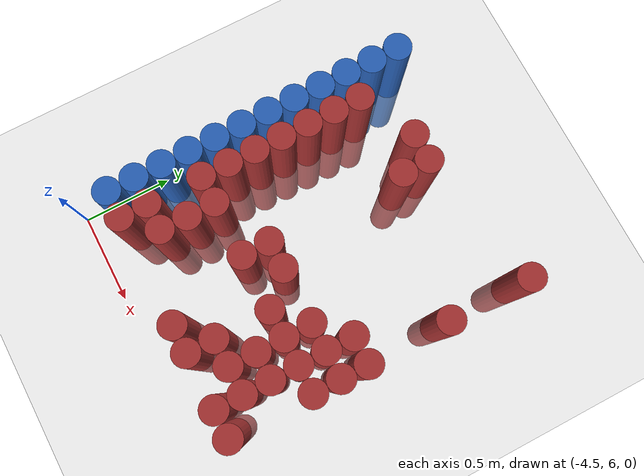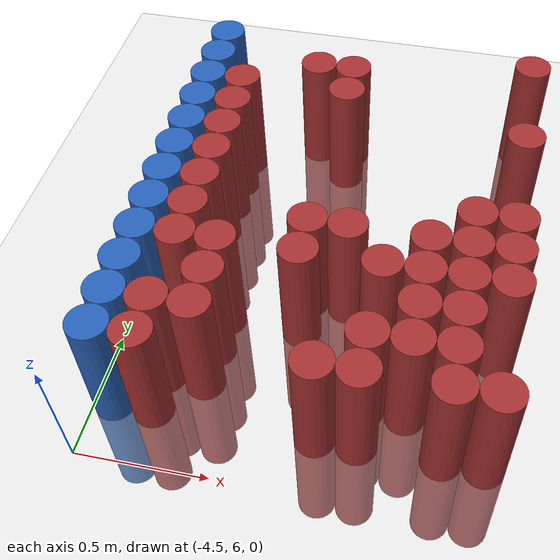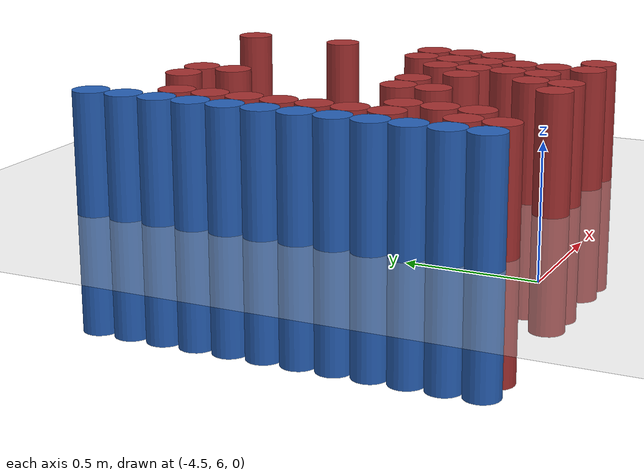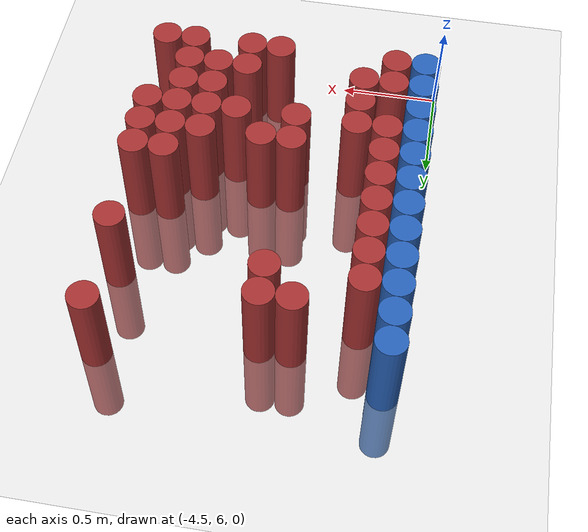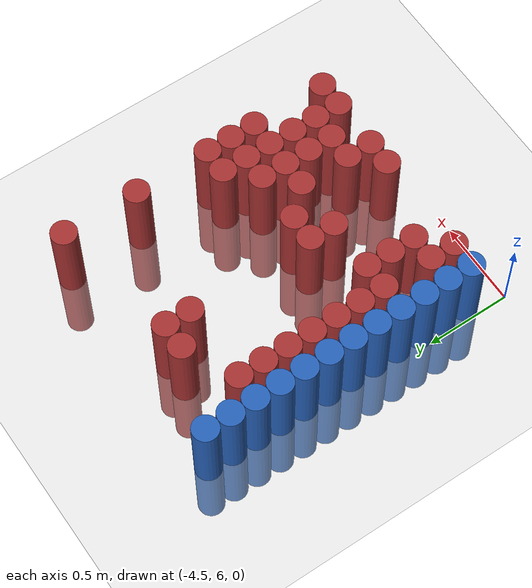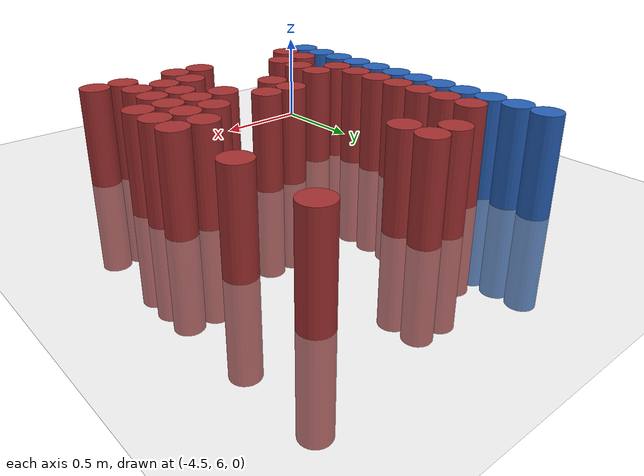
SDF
<sdf version="1.6">
 <world name="default">
  <model name="ground_plane">
   <static>1</static>
   <link name="link">
    <collision name="collision">
     <geometry><plane><normal>0 0 1</normal><size>100 100</size></plane></geometry>
     <surface><friction><ode><mu>100</mu><mu2>50</mu2></ode></friction></surface>
    </collision>
    <visual name="visual">
     <cast_shadows>0</cast_shadows>
     <geometry><plane><normal>0 0 1</normal><size>100 100</size></plane></geometry>
     <material>
      <script><uri>file://media/materials/scripts/gazebo.material</uri><name>Gazebo/Grey</name></script>
     </material>
    </visual>
   </link>
  </model>
  <model name="unit_cylinder_103">
   <static>1</static>
   <pose>-4.425000 6.225000 0.000000 0.000000 0.000000 0.000000</pose>
   <link name="link">
    <inertial>
     <mass>1</mass>
     <inertia><ixx>0.145833</ixx><ixy>0</ixy><ixz>0</ixz><iyy>0.145833</iyy><iyz>0</iyz><izz>0.125</izz></inertia>
    </inertial>
    <collision name="collision">
     <geometry><cylinder><radius>0.075000</radius><length>1</length></cylinder></geometry>
    </collision>
    <visual name="visual">
     <geometry><cylinder><radius>0.075000</radius><length>1</length></cylinder></geometry>
     <material>
      <ambient>0.152000 0.379000 0.720000 1</ambient>
      <diffuse>0.152000 0.379000 0.720000 1</diffuse>
     </material>
     <material>
      <script><name>Gazebo/Grey</name><uri>file://media/materials/scripts/gazebo.material</uri></script>
     </material>
    </visual>
   </link>
  </model>
  <model name="unit_cylinder_104">
   <static>1</static>
   <pose>-4.425000 6.375000 0.000000 0.000000 0.000000 0.000000</pose>
   <link name="link">
    <inertial>
     <mass>1</mass>
     <inertia><ixx>0.145833</ixx><ixy>0</ixy><ixz>0</ixz><iyy>0.145833</iyy><iyz>0</iyz><izz>0.125</izz></inertia>
    </inertial>
    <collision name="collision">
     <geometry><cylinder><radius>0.075000</radius><length>1</length></cylinder></geometry>
    </collision>
    <visual name="visual">
     <geometry><cylinder><radius>0.075000</radius><length>1</length></cylinder></geometry>
     <material>
      <ambient>0.152000 0.379000 0.720000 1</ambient>
      <diffuse>0.152000 0.379000 0.720000 1</diffuse>
     </material>
     <material>
      <script><name>Gazebo/Grey</name><uri>file://media/materials/scripts/gazebo.material</uri></script>
     </material>
    </visual>
   </link>
  </model>
  <model name="unit_cylinder_105">
   <static>1</static>
   <pose>-4.425000 6.525000 0.000000 0.000000 0.000000 0.000000</pose>
   <link name="link">
    <inertial>
     <mass>1</mass>
     <inertia><ixx>0.145833</ixx><ixy>0</ixy><ixz>0</ixz><iyy>0.145833</iyy><iyz>0</iyz><izz>0.125</izz></inertia>
    </inertial>
    <collision name="collision">
     <geometry><cylinder><radius>0.075000</radius><length>1</length></cylinder></geometry>
    </collision>
    <visual name="visual">
     <geometry><cylinder><radius>0.075000</radius><length>1</length></cylinder></geometry>
     <material>
      <ambient>0.152000 0.379000 0.720000 1</ambient>
      <diffuse>0.152000 0.379000 0.720000 1</diffuse>
     </material>
     <material>
      <script><name>Gazebo/Grey</name><uri>file://media/materials/scripts/gazebo.material</uri></script>
     </material>
    </visual>
   </link>
  </model>
  <model name="unit_cylinder_106">
   <static>1</static>
   <pose>-4.425000 6.675000 0.000000 0.000000 0.000000 0.000000</pose>
   <link name="link">
    <inertial>
     <mass>1</mass>
     <inertia><ixx>0.145833</ixx><ixy>0</ixy><ixz>0</ixz><iyy>0.145833</iyy><iyz>0</iyz><izz>0.125</izz></inertia>
    </inertial>
    <collision name="collision">
     <geometry><cylinder><radius>0.075000</radius><length>1</length></cylinder></geometry>
    </collision>
    <visual name="visual">
     <geometry><cylinder><radius>0.075000</radius><length>1</length></cylinder></geometry>
     <material>
      <ambient>0.152000 0.379000 0.720000 1</ambient>
      <diffuse>0.152000 0.379000 0.720000 1</diffuse>
     </material>
     <material>
      <script><name>Gazebo/Grey</name><uri>file://media/materials/scripts/gazebo.material</uri></script>
     </material>
    </visual>
   </link>
  </model>
  <model name="unit_cylinder_107">
   <static>1</static>
   <pose>-4.425000 6.825000 0.000000 0.000000 0.000000 0.000000</pose>
   <link name="link">
    <inertial>
     <mass>1</mass>
     <inertia><ixx>0.145833</ixx><ixy>0</ixy><ixz>0</ixz><iyy>0.145833</iyy><iyz>0</iyz><izz>0.125</izz></inertia>
    </inertial>
    <collision name="collision">
     <geometry><cylinder><radius>0.075000</radius><length>1</length></cylinder></geometry>
    </collision>
    <visual name="visual">
     <geometry><cylinder><radius>0.075000</radius><length>1</length></cylinder></geometry>
     <material>
      <ambient>0.152000 0.379000 0.720000 1</ambient>
      <diffuse>0.152000 0.379000 0.720000 1</diffuse>
     </material>
     <material>
      <script><name>Gazebo/Grey</name><uri>file://media/materials/scripts/gazebo.material</uri></script>
     </material>
    </visual>
   </link>
  </model>
  <model name="unit_cylinder_108">
   <static>1</static>
   <pose>-4.425000 6.975000 0.000000 0.000000 0.000000 0.000000</pose>
   <link name="link">
    <inertial>
     <mass>1</mass>
     <inertia><ixx>0.145833</ixx><ixy>0</ixy><ixz>0</ixz><iyy>0.145833</iyy><iyz>0</iyz><izz>0.125</izz></inertia>
    </inertial>
    <collision name="collision">
     <geometry><cylinder><radius>0.075000</radius><length>1</length></cylinder></geometry>
    </collision>
    <visual name="visual">
     <geometry><cylinder><radius>0.075000</radius><length>1</length></cylinder></geometry>
     <material>
      <ambient>0.152000 0.379000 0.720000 1</ambient>
      <diffuse>0.152000 0.379000 0.720000 1</diffuse>
     </material>
     <material>
      <script><name>Gazebo/Grey</name><uri>file://media/materials/scripts/gazebo.material</uri></script>
     </material>
    </visual>
   </link>
  </model>
  <model name="unit_cylinder_109">
   <static>1</static>
   <pose>-4.425000 7.125000 0.000000 0.000000 0.000000 0.000000</pose>
   <link name="link">
    <inertial>
     <mass>1</mass>
     <inertia><ixx>0.145833</ixx><ixy>0</ixy><ixz>0</ixz><iyy>0.145833</iyy><iyz>0</iyz><izz>0.125</izz></inertia>
    </inertial>
    <collision name="collision">
     <geometry><cylinder><radius>0.075000</radius><length>1</length></cylinder></geometry>
    </collision>
    <visual name="visual">
     <geometry><cylinder><radius>0.075000</radius><length>1</length></cylinder></geometry>
     <material>
      <ambient>0.152000 0.379000 0.720000 1</ambient>
      <diffuse>0.152000 0.379000 0.720000 1</diffuse>
     </material>
     <material>
      <script><name>Gazebo/Grey</name><uri>file://media/materials/scripts/gazebo.material</uri></script>
     </material>
    </visual>
   </link>
  </model>
  <model name="unit_cylinder_110">
   <static>1</static>
   <pose>-4.425000 7.275000 0.000000 0.000000 0.000000 0.000000</pose>
   <link name="link">
    <inertial>
     <mass>1</mass>
     <inertia><ixx>0.145833</ixx><ixy>0</ixy><ixz>0</ixz><iyy>0.145833</iyy><iyz>0</iyz><izz>0.125</izz></inertia>
    </inertial>
    <collision name="collision">
     <geometry><cylinder><radius>0.075000</radius><length>1</length></cylinder></geometry>
    </collision>
    <visual name="visual">
     <geometry><cylinder><radius>0.075000</radius><length>1</length></cylinder></geometry>
     <material>
      <ambient>0.152000 0.379000 0.720000 1</ambient>
      <diffuse>0.152000 0.379000 0.720000 1</diffuse>
     </material>
     <material>
      <script><name>Gazebo/Grey</name><uri>file://media/materials/scripts/gazebo.material</uri></script>
     </material>
    </visual>
   </link>
  </model>
  <model name="unit_cylinder_111">
   <static>1</static>
   <pose>-4.425000 7.425000 0.000000 0.000000 0.000000 0.000000</pose>
   <link name="link">
    <inertial>
     <mass>1</mass>
     <inertia><ixx>0.145833</ixx><ixy>0</ixy><ixz>0</ixz><iyy>0.145833</iyy><iyz>0</iyz><izz>0.125</izz></inertia>
    </inertial>
    <collision name="collision">
     <geometry><cylinder><radius>0.075000</radius><length>1</length></cylinder></geometry>
    </collision>
    <visual name="visual">
     <geometry><cylinder><radius>0.075000</radius><length>1</length></cylinder></geometry>
     <material>
      <ambient>0.152000 0.379000 0.720000 1</ambient>
      <diffuse>0.152000 0.379000 0.720000 1</diffuse>
     </material>
     <material>
      <script><name>Gazebo/Grey</name><uri>file://media/materials/scripts/gazebo.material</uri></script>
     </material>
    </visual>
   </link>
  </model>
  <model name="unit_cylinder_112">
   <static>1</static>
   <pose>-4.425000 7.575000 0.000000 0.000000 0.000000 0.000000</pose>
   <link name="link">
    <inertial>
     <mass>1</mass>
     <inertia><ixx>0.145833</ixx><ixy>0</ixy><ixz>0</ixz><iyy>0.145833</iyy><iyz>0</iyz><izz>0.125</izz></inertia>
    </inertial>
    <collision name="collision">
     <geometry><cylinder><radius>0.075000</radius><length>1</length></cylinder></geometry>
    </collision>
    <visual name="visual">
     <geometry><cylinder><radius>0.075000</radius><length>1</length></cylinder></geometry>
     <material>
      <ambient>0.152000 0.379000 0.720000 1</ambient>
      <diffuse>0.152000 0.379000 0.720000 1</diffuse>
     </material>
     <material>
      <script><name>Gazebo/Grey</name><uri>file://media/materials/scripts/gazebo.material</uri></script>
     </material>
    </visual>
   </link>
  </model>
  <model name="unit_cylinder_113">
   <static>1</static>
   <pose>-4.425000 7.725000 0.000000 0.000000 0.000000 0.000000</pose>
   <link name="link">
    <inertial>
     <mass>1</mass>
     <inertia><ixx>0.145833</ixx><ixy>0</ixy><ixz>0</ixz><iyy>0.145833</iyy><iyz>0</iyz><izz>0.125</izz></inertia>
    </inertial>
    <collision name="collision">
     <geometry><cylinder><radius>0.075000</radius><length>1</length></cylinder></geometry>
    </collision>
    <visual name="visual">
     <geometry><cylinder><radius>0.075000</radius><length>1</length></cylinder></geometry>
     <material>
      <ambient>0.152000 0.379000 0.720000 1</ambient>
      <diffuse>0.152000 0.379000 0.720000 1</diffuse>
     </material>
     <material>
      <script><name>Gazebo/Grey</name><uri>file://media/materials/scripts/gazebo.material</uri></script>
     </material>
    </visual>
   </link>
  </model>
  <model name="unit_cylinder_114">
   <static>1</static>
   <pose>-4.425000 7.875000 0.000000 0.000000 0.000000 0.000000</pose>
   <link name="link">
    <inertial>
     <mass>1</mass>
     <inertia><ixx>0.145833</ixx><ixy>0</ixy><ixz>0</ixz><iyy>0.145833</iyy><iyz>0</iyz><izz>0.125</izz></inertia>
    </inertial>
    <collision name="collision">
     <geometry><cylinder><radius>0.075000</radius><length>1</length></cylinder></geometry>
    </collision>
    <visual name="visual">
     <geometry><cylinder><radius>0.075000</radius><length>1</length></cylinder></geometry>
     <material>
      <ambient>0.152000 0.379000 0.720000 1</ambient>
      <diffuse>0.152000 0.379000 0.720000 1</diffuse>
     </material>
     <material>
      <script><name>Gazebo/Grey</name><uri>file://media/materials/scripts/gazebo.material</uri></script>
     </material>
    </visual>
   </link>
  </model>
  <model name="unit_cylinder_129">
   <static>1</static>
   <pose>-4.275000 6.225000 0.000000 0.000000 0.000000 0.000000</pose>
   <link name="link">
    <inertial>
     <mass>1</mass>
     <inertia><ixx>0.145833</ixx><ixy>0</ixy><ixz>0</ixz><iyy>0.145833</iyy><iyz>0</iyz><izz>0.125</izz></inertia>
    </inertial>
    <collision name="collision">
     <geometry><cylinder><radius>0.075000</radius><length>1</length></cylinder></geometry>
    </collision>
    <visual name="visual">
     <geometry><cylinder><radius>0.075000</radius><length>1</length></cylinder></geometry>
     <material>
      <ambient>0.648000 0.192000 0.192000 1</ambient>
      <diffuse>0.648000 0.192000 0.192000 1</diffuse>
     </material>
     <material>
      <script><name>Gazebo/Grey</name><uri>file://media/materials/scripts/gazebo.material</uri></script>
     </material>
    </visual>
   </link>
  </model>
  <model name="unit_cylinder_130">
   <static>1</static>
   <pose>-4.275000 6.375000 0.000000 0.000000 0.000000 0.000000</pose>
   <link name="link">
    <inertial>
     <mass>1</mass>
     <inertia><ixx>0.145833</ixx><ixy>0</ixy><ixz>0</ixz><iyy>0.145833</iyy><iyz>0</iyz><izz>0.125</izz></inertia>
    </inertial>
    <collision name="collision">
     <geometry><cylinder><radius>0.075000</radius><length>1</length></cylinder></geometry>
    </collision>
    <visual name="visual">
     <geometry><cylinder><radius>0.075000</radius><length>1</length></cylinder></geometry>
     <material>
      <ambient>0.648000 0.192000 0.192000 1</ambient>
      <diffuse>0.648000 0.192000 0.192000 1</diffuse>
     </material>
     <material>
      <script><name>Gazebo/Grey</name><uri>file://media/materials/scripts/gazebo.material</uri></script>
     </material>
    </visual>
   </link>
  </model>
  <model name="unit_cylinder_131">
   <static>1</static>
   <pose>-4.275000 6.675000 0.000000 0.000000 0.000000 0.000000</pose>
   <link name="link">
    <inertial>
     <mass>1</mass>
     <inertia><ixx>0.145833</ixx><ixy>0</ixy><ixz>0</ixz><iyy>0.145833</iyy><iyz>0</iyz><izz>0.125</izz></inertia>
    </inertial>
    <collision name="collision">
     <geometry><cylinder><radius>0.075000</radius><length>1</length></cylinder></geometry>
    </collision>
    <visual name="visual">
     <geometry><cylinder><radius>0.075000</radius><length>1</length></cylinder></geometry>
     <material>
      <ambient>0.648000 0.192000 0.192000 1</ambient>
      <diffuse>0.648000 0.192000 0.192000 1</diffuse>
     </material>
     <material>
      <script><name>Gazebo/Grey</name><uri>file://media/materials/scripts/gazebo.material</uri></script>
     </material>
    </visual>
   </link>
  </model>
  <model name="unit_cylinder_132">
   <static>1</static>
   <pose>-4.275000 6.825000 0.000000 0.000000 0.000000 0.000000</pose>
   <link name="link">
    <inertial>
     <mass>1</mass>
     <inertia><ixx>0.145833</ixx><ixy>0</ixy><ixz>0</ixz><iyy>0.145833</iyy><iyz>0</iyz><izz>0.125</izz></inertia>
    </inertial>
    <collision name="collision">
     <geometry><cylinder><radius>0.075000</radius><length>1</length></cylinder></geometry>
    </collision>
    <visual name="visual">
     <geometry><cylinder><radius>0.075000</radius><length>1</length></cylinder></geometry>
     <material>
      <ambient>0.648000 0.192000 0.192000 1</ambient>
      <diffuse>0.648000 0.192000 0.192000 1</diffuse>
     </material>
     <material>
      <script><name>Gazebo/Grey</name><uri>file://media/materials/scripts/gazebo.material</uri></script>
     </material>
    </visual>
   </link>
  </model>
  <model name="unit_cylinder_133">
   <static>1</static>
   <pose>-4.275000 6.975000 0.000000 0.000000 0.000000 0.000000</pose>
   <link name="link">
    <inertial>
     <mass>1</mass>
     <inertia><ixx>0.145833</ixx><ixy>0</ixy><ixz>0</ixz><iyy>0.145833</iyy><iyz>0</iyz><izz>0.125</izz></inertia>
    </inertial>
    <collision name="collision">
     <geometry><cylinder><radius>0.075000</radius><length>1</length></cylinder></geometry>
    </collision>
    <visual name="visual">
     <geometry><cylinder><radius>0.075000</radius><length>1</length></cylinder></geometry>
     <material>
      <ambient>0.648000 0.192000 0.192000 1</ambient>
      <diffuse>0.648000 0.192000 0.192000 1</diffuse>
     </material>
     <material>
      <script><name>Gazebo/Grey</name><uri>file://media/materials/scripts/gazebo.material</uri></script>
     </material>
    </visual>
   </link>
  </model>
  <model name="unit_cylinder_134">
   <static>1</static>
   <pose>-4.275000 7.125000 0.000000 0.000000 0.000000 0.000000</pose>
   <link name="link">
    <inertial>
     <mass>1</mass>
     <inertia><ixx>0.145833</ixx><ixy>0</ixy><ixz>0</ixz><iyy>0.145833</iyy><iyz>0</iyz><izz>0.125</izz></inertia>
    </inertial>
    <collision name="collision">
     <geometry><cylinder><radius>0.075000</radius><length>1</length></cylinder></geometry>
    </collision>
    <visual name="visual">
     <geometry><cylinder><radius>0.075000</radius><length>1</length></cylinder></geometry>
     <material>
      <ambient>0.648000 0.192000 0.192000 1</ambient>
      <diffuse>0.648000 0.192000 0.192000 1</diffuse>
     </material>
     <material>
      <script><name>Gazebo/Grey</name><uri>file://media/materials/scripts/gazebo.material</uri></script>
     </material>
    </visual>
   </link>
  </model>
  <model name="unit_cylinder_135">
   <static>1</static>
   <pose>-4.275000 7.275000 0.000000 0.000000 0.000000 0.000000</pose>
   <link name="link">
    <inertial>
     <mass>1</mass>
     <inertia><ixx>0.145833</ixx><ixy>0</ixy><ixz>0</ixz><iyy>0.145833</iyy><iyz>0</iyz><izz>0.125</izz></inertia>
    </inertial>
    <collision name="collision">
     <geometry><cylinder><radius>0.075000</radius><length>1</length></cylinder></geometry>
    </collision>
    <visual name="visual">
     <geometry><cylinder><radius>0.075000</radius><length>1</length></cylinder></geometry>
     <material>
      <ambient>0.648000 0.192000 0.192000 1</ambient>
      <diffuse>0.648000 0.192000 0.192000 1</diffuse>
     </material>
     <material>
      <script><name>Gazebo/Grey</name><uri>file://media/materials/scripts/gazebo.material</uri></script>
     </material>
    </visual>
   </link>
  </model>
  <model name="unit_cylinder_136">
   <static>1</static>
   <pose>-4.275000 7.425000 0.000000 0.000000 0.000000 0.000000</pose>
   <link name="link">
    <inertial>
     <mass>1</mass>
     <inertia><ixx>0.145833</ixx><ixy>0</ixy><ixz>0</ixz><iyy>0.145833</iyy><iyz>0</iyz><izz>0.125</izz></inertia>
    </inertial>
    <collision name="collision">
     <geometry><cylinder><radius>0.075000</radius><length>1</length></cylinder></geometry>
    </collision>
    <visual name="visual">
     <geometry><cylinder><radius>0.075000</radius><length>1</length></cylinder></geometry>
     <material>
      <ambient>0.648000 0.192000 0.192000 1</ambient>
      <diffuse>0.648000 0.192000 0.192000 1</diffuse>
     </material>
     <material>
      <script><name>Gazebo/Grey</name><uri>file://media/materials/scripts/gazebo.material</uri></script>
     </material>
    </visual>
   </link>
  </model>
  <model name="unit_cylinder_137">
   <static>1</static>
   <pose>-4.275000 7.575000 0.000000 0.000000 0.000000 0.000000</pose>
   <link name="link">
    <inertial>
     <mass>1</mass>
     <inertia><ixx>0.145833</ixx><ixy>0</ixy><ixz>0</ixz><iyy>0.145833</iyy><iyz>0</iyz><izz>0.125</izz></inertia>
    </inertial>
    <collision name="collision">
     <geometry><cylinder><radius>0.075000</radius><length>1</length></cylinder></geometry>
    </collision>
    <visual name="visual">
     <geometry><cylinder><radius>0.075000</radius><length>1</length></cylinder></geometry>
     <material>
      <ambient>0.648000 0.192000 0.192000 1</ambient>
      <diffuse>0.648000 0.192000 0.192000 1</diffuse>
     </material>
     <material>
      <script><name>Gazebo/Grey</name><uri>file://media/materials/scripts/gazebo.material</uri></script>
     </material>
    </visual>
   </link>
  </model>
  <model name="unit_cylinder_150">
   <static>1</static>
   <pose>-4.125000 6.375000 0.000000 0.000000 0.000000 0.000000</pose>
   <link name="link">
    <inertial>
     <mass>1</mass>
     <inertia><ixx>0.145833</ixx><ixy>0</ixy><ixz>0</ixz><iyy>0.145833</iyy><iyz>0</iyz><izz>0.125</izz></inertia>
    </inertial>
    <collision name="collision">
     <geometry><cylinder><radius>0.075000</radius><length>1</length></cylinder></geometry>
    </collision>
    <visual name="visual">
     <geometry><cylinder><radius>0.075000</radius><length>1</length></cylinder></geometry>
     <material>
      <ambient>0.648000 0.192000 0.192000 1</ambient>
      <diffuse>0.648000 0.192000 0.192000 1</diffuse>
     </material>
     <material>
      <script><name>Gazebo/Grey</name><uri>file://media/materials/scripts/gazebo.material</uri></script>
     </material>
    </visual>
   </link>
  </model>
  <model name="unit_cylinder_151">
   <static>1</static>
   <pose>-4.125000 6.525000 0.000000 0.000000 0.000000 0.000000</pose>
   <link name="link">
    <inertial>
     <mass>1</mass>
     <inertia><ixx>0.145833</ixx><ixy>0</ixy><ixz>0</ixz><iyy>0.145833</iyy><iyz>0</iyz><izz>0.125</izz></inertia>
    </inertial>
    <collision name="collision">
     <geometry><cylinder><radius>0.075000</radius><length>1</length></cylinder></geometry>
    </collision>
    <visual name="visual">
     <geometry><cylinder><radius>0.075000</radius><length>1</length></cylinder></geometry>
     <material>
      <ambient>0.648000 0.192000 0.192000 1</ambient>
      <diffuse>0.648000 0.192000 0.192000 1</diffuse>
     </material>
     <material>
      <script><name>Gazebo/Grey</name><uri>file://media/materials/scripts/gazebo.material</uri></script>
     </material>
    </visual>
   </link>
  </model>
  <model name="unit_cylinder_152">
   <static>1</static>
   <pose>-4.125000 6.675000 0.000000 0.000000 0.000000 0.000000</pose>
   <link name="link">
    <inertial>
     <mass>1</mass>
     <inertia><ixx>0.145833</ixx><ixy>0</ixy><ixz>0</ixz><iyy>0.145833</iyy><iyz>0</iyz><izz>0.125</izz></inertia>
    </inertial>
    <collision name="collision">
     <geometry><cylinder><radius>0.075000</radius><length>1</length></cylinder></geometry>
    </collision>
    <visual name="visual">
     <geometry><cylinder><radius>0.075000</radius><length>1</length></cylinder></geometry>
     <material>
      <ambient>0.648000 0.192000 0.192000 1</ambient>
      <diffuse>0.648000 0.192000 0.192000 1</diffuse>
     </material>
     <material>
      <script><name>Gazebo/Grey</name><uri>file://media/materials/scripts/gazebo.material</uri></script>
     </material>
    </visual>
   </link>
  </model>
  <model name="unit_cylinder_161">
   <static>1</static>
   <pose>-3.975000 7.725000 0.000000 0.000000 0.000000 0.000000</pose>
   <link name="link">
    <inertial>
     <mass>1</mass>
     <inertia><ixx>0.145833</ixx><ixy>0</ixy><ixz>0</ixz><iyy>0.145833</iyy><iyz>0</iyz><izz>0.125</izz></inertia>
    </inertial>
    <collision name="collision">
     <geometry><cylinder><radius>0.075000</radius><length>1</length></cylinder></geometry>
    </collision>
    <visual name="visual">
     <geometry><cylinder><radius>0.075000</radius><length>1</length></cylinder></geometry>
     <material>
      <ambient>0.648000 0.192000 0.192000 1</ambient>
      <diffuse>0.648000 0.192000 0.192000 1</diffuse>
     </material>
     <material>
      <script><name>Gazebo/Grey</name><uri>file://media/materials/scripts/gazebo.material</uri></script>
     </material>
    </visual>
   </link>
  </model>
  <model name="unit_cylinder_166">
   <static>1</static>
   <pose>-3.825000 6.675000 0.000000 0.000000 0.000000 0.000000</pose>
   <link name="link">
    <inertial>
     <mass>1</mass>
     <inertia><ixx>0.145833</ixx><ixy>0</ixy><ixz>0</ixz><iyy>0.145833</iyy><iyz>0</iyz><izz>0.125</izz></inertia>
    </inertial>
    <collision name="collision">
     <geometry><cylinder><radius>0.075000</radius><length>1</length></cylinder></geometry>
    </collision>
    <visual name="visual">
     <geometry><cylinder><radius>0.075000</radius><length>1</length></cylinder></geometry>
     <material>
      <ambient>0.648000 0.192000 0.192000 1</ambient>
      <diffuse>0.648000 0.192000 0.192000 1</diffuse>
     </material>
     <material>
      <script><name>Gazebo/Grey</name><uri>file://media/materials/scripts/gazebo.material</uri></script>
     </material>
    </visual>
   </link>
  </model>
  <model name="unit_cylinder_167">
   <static>1</static>
   <pose>-3.825000 6.825000 0.000000 0.000000 0.000000 0.000000</pose>
   <link name="link">
    <inertial>
     <mass>1</mass>
     <inertia><ixx>0.145833</ixx><ixy>0</ixy><ixz>0</ixz><iyy>0.145833</iyy><iyz>0</iyz><izz>0.125</izz></inertia>
    </inertial>
    <collision name="collision">
     <geometry><cylinder><radius>0.075000</radius><length>1</length></cylinder></geometry>
    </collision>
    <visual name="visual">
     <geometry><cylinder><radius>0.075000</radius><length>1</length></cylinder></geometry>
     <material>
      <ambient>0.648000 0.192000 0.192000 1</ambient>
      <diffuse>0.648000 0.192000 0.192000 1</diffuse>
     </material>
     <material>
      <script><name>Gazebo/Grey</name><uri>file://media/materials/scripts/gazebo.material</uri></script>
     </material>
    </visual>
   </link>
  </model>
  <model name="unit_cylinder_168">
   <static>1</static>
   <pose>-3.825000 7.575000 0.000000 0.000000 0.000000 0.000000</pose>
   <link name="link">
    <inertial>
     <mass>1</mass>
     <inertia><ixx>0.145833</ixx><ixy>0</ixy><ixz>0</ixz><iyy>0.145833</iyy><iyz>0</iyz><izz>0.125</izz></inertia>
    </inertial>
    <collision name="collision">
     <geometry><cylinder><radius>0.075000</radius><length>1</length></cylinder></geometry>
    </collision>
    <visual name="visual">
     <geometry><cylinder><radius>0.075000</radius><length>1</length></cylinder></geometry>
     <material>
      <ambient>0.648000 0.192000 0.192000 1</ambient>
      <diffuse>0.648000 0.192000 0.192000 1</diffuse>
     </material>
     <material>
      <script><name>Gazebo/Grey</name><uri>file://media/materials/scripts/gazebo.material</uri></script>
     </material>
    </visual>
   </link>
  </model>
  <model name="unit_cylinder_169">
   <static>1</static>
   <pose>-3.825000 7.725000 0.000000 0.000000 0.000000 0.000000</pose>
   <link name="link">
    <inertial>
     <mass>1</mass>
     <inertia><ixx>0.145833</ixx><ixy>0</ixy><ixz>0</ixz><iyy>0.145833</iyy><iyz>0</iyz><izz>0.125</izz></inertia>
    </inertial>
    <collision name="collision">
     <geometry><cylinder><radius>0.075000</radius><length>1</length></cylinder></geometry>
    </collision>
    <visual name="visual">
     <geometry><cylinder><radius>0.075000</radius><length>1</length></cylinder></geometry>
     <material>
      <ambient>0.648000 0.192000 0.192000 1</ambient>
      <diffuse>0.648000 0.192000 0.192000 1</diffuse>
     </material>
     <material>
      <script><name>Gazebo/Grey</name><uri>file://media/materials/scripts/gazebo.material</uri></script>
     </material>
    </visual>
   </link>
  </model>
  <model name="unit_cylinder_174">
   <static>1</static>
   <pose>-3.675000 6.225000 0.000000 0.000000 0.000000 0.000000</pose>
   <link name="link">
    <inertial>
     <mass>1</mass>
     <inertia><ixx>0.145833</ixx><ixy>0</ixy><ixz>0</ixz><iyy>0.145833</iyy><iyz>0</iyz><izz>0.125</izz></inertia>
    </inertial>
    <collision name="collision">
     <geometry><cylinder><radius>0.075000</radius><length>1</length></cylinder></geometry>
    </collision>
    <visual name="visual">
     <geometry><cylinder><radius>0.075000</radius><length>1</length></cylinder></geometry>
     <material>
      <ambient>0.648000 0.192000 0.192000 1</ambient>
      <diffuse>0.648000 0.192000 0.192000 1</diffuse>
     </material>
     <material>
      <script><name>Gazebo/Grey</name><uri>file://media/materials/scripts/gazebo.material</uri></script>
     </material>
    </visual>
   </link>
  </model>
  <model name="unit_cylinder_175">
   <static>1</static>
   <pose>-3.675000 6.825000 0.000000 0.000000 0.000000 0.000000</pose>
   <link name="link">
    <inertial>
     <mass>1</mass>
     <inertia><ixx>0.145833</ixx><ixy>0</ixy><ixz>0</ixz><iyy>0.145833</iyy><iyz>0</iyz><izz>0.125</izz></inertia>
    </inertial>
    <collision name="collision">
     <geometry><cylinder><radius>0.075000</radius><length>1</length></cylinder></geometry>
    </collision>
    <visual name="visual">
     <geometry><cylinder><radius>0.075000</radius><length>1</length></cylinder></geometry>
     <material>
      <ambient>0.648000 0.192000 0.192000 1</ambient>
      <diffuse>0.648000 0.192000 0.192000 1</diffuse>
     </material>
     <material>
      <script><name>Gazebo/Grey</name><uri>file://media/materials/scripts/gazebo.material</uri></script>
     </material>
    </visual>
   </link>
  </model>
  <model name="unit_cylinder_185">
   <static>1</static>
   <pose>-3.525000 6.225000 0.000000 0.000000 0.000000 0.000000</pose>
   <link name="link">
    <inertial>
     <mass>1</mass>
     <inertia><ixx>0.145833</ixx><ixy>0</ixy><ixz>0</ixz><iyy>0.145833</iyy><iyz>0</iyz><izz>0.125</izz></inertia>
    </inertial>
    <collision name="collision">
     <geometry><cylinder><radius>0.075000</radius><length>1</length></cylinder></geometry>
    </collision>
    <visual name="visual">
     <geometry><cylinder><radius>0.075000</radius><length>1</length></cylinder></geometry>
     <material>
      <ambient>0.648000 0.192000 0.192000 1</ambient>
      <diffuse>0.648000 0.192000 0.192000 1</diffuse>
     </material>
     <material>
      <script><name>Gazebo/Grey</name><uri>file://media/materials/scripts/gazebo.material</uri></script>
     </material>
    </visual>
   </link>
  </model>
  <model name="unit_cylinder_186">
   <static>1</static>
   <pose>-3.525000 6.375000 0.000000 0.000000 0.000000 0.000000</pose>
   <link name="link">
    <inertial>
     <mass>1</mass>
     <inertia><ixx>0.145833</ixx><ixy>0</ixy><ixz>0</ixz><iyy>0.145833</iyy><iyz>0</iyz><izz>0.125</izz></inertia>
    </inertial>
    <collision name="collision">
     <geometry><cylinder><radius>0.075000</radius><length>1</length></cylinder></geometry>
    </collision>
    <visual name="visual">
     <geometry><cylinder><radius>0.075000</radius><length>1</length></cylinder></geometry>
     <material>
      <ambient>0.648000 0.192000 0.192000 1</ambient>
      <diffuse>0.648000 0.192000 0.192000 1</diffuse>
     </material>
     <material>
      <script><name>Gazebo/Grey</name><uri>file://media/materials/scripts/gazebo.material</uri></script>
     </material>
    </visual>
   </link>
  </model>
  <model name="unit_cylinder_187">
   <static>1</static>
   <pose>-3.525000 6.675000 0.000000 0.000000 0.000000 0.000000</pose>
   <link name="link">
    <inertial>
     <mass>1</mass>
     <inertia><ixx>0.145833</ixx><ixy>0</ixy><ixz>0</ixz><iyy>0.145833</iyy><iyz>0</iyz><izz>0.125</izz></inertia>
    </inertial>
    <collision name="collision">
     <geometry><cylinder><radius>0.075000</radius><length>1</length></cylinder></geometry>
    </collision>
    <visual name="visual">
     <geometry><cylinder><radius>0.075000</radius><length>1</length></cylinder></geometry>
     <material>
      <ambient>0.648000 0.192000 0.192000 1</ambient>
      <diffuse>0.648000 0.192000 0.192000 1</diffuse>
     </material>
     <material>
      <script><name>Gazebo/Grey</name><uri>file://media/materials/scripts/gazebo.material</uri></script>
     </material>
    </visual>
   </link>
  </model>
  <model name="unit_cylinder_194">
   <static>1</static>
   <pose>-3.375000 6.375000 0.000000 0.000000 0.000000 0.000000</pose>
   <link name="link">
    <inertial>
     <mass>1</mass>
     <inertia><ixx>0.145833</ixx><ixy>0</ixy><ixz>0</ixz><iyy>0.145833</iyy><iyz>0</iyz><izz>0.125</izz></inertia>
    </inertial>
    <collision name="collision">
     <geometry><cylinder><radius>0.075000</radius><length>1</length></cylinder></geometry>
    </collision>
    <visual name="visual">
     <geometry><cylinder><radius>0.075000</radius><length>1</length></cylinder></geometry>
     <material>
      <ambient>0.648000 0.192000 0.192000 1</ambient>
      <diffuse>0.648000 0.192000 0.192000 1</diffuse>
     </material>
     <material>
      <script><name>Gazebo/Grey</name><uri>file://media/materials/scripts/gazebo.material</uri></script>
     </material>
    </visual>
   </link>
  </model>
  <model name="unit_cylinder_195">
   <static>1</static>
   <pose>-3.375000 6.525000 0.000000 0.000000 0.000000 0.000000</pose>
   <link name="link">
    <inertial>
     <mass>1</mass>
     <inertia><ixx>0.145833</ixx><ixy>0</ixy><ixz>0</ixz><iyy>0.145833</iyy><iyz>0</iyz><izz>0.125</izz></inertia>
    </inertial>
    <collision name="collision">
     <geometry><cylinder><radius>0.075000</radius><length>1</length></cylinder></geometry>
    </collision>
    <visual name="visual">
     <geometry><cylinder><radius>0.075000</radius><length>1</length></cylinder></geometry>
     <material>
      <ambient>0.648000 0.192000 0.192000 1</ambient>
      <diffuse>0.648000 0.192000 0.192000 1</diffuse>
     </material>
     <material>
      <script><name>Gazebo/Grey</name><uri>file://media/materials/scripts/gazebo.material</uri></script>
     </material>
    </visual>
   </link>
  </model>
  <model name="unit_cylinder_196">
   <static>1</static>
   <pose>-3.375000 6.675000 0.000000 0.000000 0.000000 0.000000</pose>
   <link name="link">
    <inertial>
     <mass>1</mass>
     <inertia><ixx>0.145833</ixx><ixy>0</ixy><ixz>0</ixz><iyy>0.145833</iyy><iyz>0</iyz><izz>0.125</izz></inertia>
    </inertial>
    <collision name="collision">
     <geometry><cylinder><radius>0.075000</radius><length>1</length></cylinder></geometry>
    </collision>
    <visual name="visual">
     <geometry><cylinder><radius>0.075000</radius><length>1</length></cylinder></geometry>
     <material>
      <ambient>0.648000 0.192000 0.192000 1</ambient>
      <diffuse>0.648000 0.192000 0.192000 1</diffuse>
     </material>
     <material>
      <script><name>Gazebo/Grey</name><uri>file://media/materials/scripts/gazebo.material</uri></script>
     </material>
    </visual>
   </link>
  </model>
  <model name="unit_cylinder_197">
   <static>1</static>
   <pose>-3.375000 6.825000 0.000000 0.000000 0.000000 0.000000</pose>
   <link name="link">
    <inertial>
     <mass>1</mass>
     <inertia><ixx>0.145833</ixx><ixy>0</ixy><ixz>0</ixz><iyy>0.145833</iyy><iyz>0</iyz><izz>0.125</izz></inertia>
    </inertial>
    <collision name="collision">
     <geometry><cylinder><radius>0.075000</radius><length>1</length></cylinder></geometry>
    </collision>
    <visual name="visual">
     <geometry><cylinder><radius>0.075000</radius><length>1</length></cylinder></geometry>
     <material>
      <ambient>0.648000 0.192000 0.192000 1</ambient>
      <diffuse>0.648000 0.192000 0.192000 1</diffuse>
     </material>
     <material>
      <script><name>Gazebo/Grey</name><uri>file://media/materials/scripts/gazebo.material</uri></script>
     </material>
    </visual>
   </link>
  </model>
  <model name="unit_cylinder_210">
   <static>1</static>
   <pose>-3.225000 6.225000 0.000000 0.000000 0.000000 0.000000</pose>
   <link name="link">
    <inertial>
     <mass>1</mass>
     <inertia><ixx>0.145833</ixx><ixy>0</ixy><ixz>0</ixz><iyy>0.145833</iyy><iyz>0</iyz><izz>0.125</izz></inertia>
    </inertial>
    <collision name="collision">
     <geometry><cylinder><radius>0.075000</radius><length>1</length></cylinder></geometry>
    </collision>
    <visual name="visual">
     <geometry><cylinder><radius>0.075000</radius><length>1</length></cylinder></geometry>
     <material>
      <ambient>0.648000 0.192000 0.192000 1</ambient>
      <diffuse>0.648000 0.192000 0.192000 1</diffuse>
     </material>
     <material>
      <script><name>Gazebo/Grey</name><uri>file://media/materials/scripts/gazebo.material</uri></script>
     </material>
    </visual>
   </link>
  </model>
  <model name="unit_cylinder_211">
   <static>1</static>
   <pose>-3.225000 6.375000 0.000000 0.000000 0.000000 0.000000</pose>
   <link name="link">
    <inertial>
     <mass>1</mass>
     <inertia><ixx>0.145833</ixx><ixy>0</ixy><ixz>0</ixz><iyy>0.145833</iyy><iyz>0</iyz><izz>0.125</izz></inertia>
    </inertial>
    <collision name="collision">
     <geometry><cylinder><radius>0.075000</radius><length>1</length></cylinder></geometry>
    </collision>
    <visual name="visual">
     <geometry><cylinder><radius>0.075000</radius><length>1</length></cylinder></geometry>
     <material>
      <ambient>0.648000 0.192000 0.192000 1</ambient>
      <diffuse>0.648000 0.192000 0.192000 1</diffuse>
     </material>
     <material>
      <script><name>Gazebo/Grey</name><uri>file://media/materials/scripts/gazebo.material</uri></script>
     </material>
    </visual>
   </link>
  </model>
  <model name="unit_cylinder_212">
   <static>1</static>
   <pose>-3.225000 6.525000 0.000000 0.000000 0.000000 0.000000</pose>
   <link name="link">
    <inertial>
     <mass>1</mass>
     <inertia><ixx>0.145833</ixx><ixy>0</ixy><ixz>0</ixz><iyy>0.145833</iyy><iyz>0</iyz><izz>0.125</izz></inertia>
    </inertial>
    <collision name="collision">
     <geometry><cylinder><radius>0.075000</radius><length>1</length></cylinder></geometry>
    </collision>
    <visual name="visual">
     <geometry><cylinder><radius>0.075000</radius><length>1</length></cylinder></geometry>
     <material>
      <ambient>0.648000 0.192000 0.192000 1</ambient>
      <diffuse>0.648000 0.192000 0.192000 1</diffuse>
     </material>
     <material>
      <script><name>Gazebo/Grey</name><uri>file://media/materials/scripts/gazebo.material</uri></script>
     </material>
    </visual>
   </link>
  </model>
  <model name="unit_cylinder_213">
   <static>1</static>
   <pose>-3.225000 6.675000 0.000000 0.000000 0.000000 0.000000</pose>
   <link name="link">
    <inertial>
     <mass>1</mass>
     <inertia><ixx>0.145833</ixx><ixy>0</ixy><ixz>0</ixz><iyy>0.145833</iyy><iyz>0</iyz><izz>0.125</izz></inertia>
    </inertial>
    <collision name="collision">
     <geometry><cylinder><radius>0.075000</radius><length>1</length></cylinder></geometry>
    </collision>
    <visual name="visual">
     <geometry><cylinder><radius>0.075000</radius><length>1</length></cylinder></geometry>
     <material>
      <ambient>0.648000 0.192000 0.192000 1</ambient>
      <diffuse>0.648000 0.192000 0.192000 1</diffuse>
     </material>
     <material>
      <script><name>Gazebo/Grey</name><uri>file://media/materials/scripts/gazebo.material</uri></script>
     </material>
    </visual>
   </link>
  </model>
  <model name="unit_cylinder_214">
   <static>1</static>
   <pose>-3.225000 6.825000 0.000000 0.000000 0.000000 0.000000</pose>
   <link name="link">
    <inertial>
     <mass>1</mass>
     <inertia><ixx>0.145833</ixx><ixy>0</ixy><ixz>0</ixz><iyy>0.145833</iyy><iyz>0</iyz><izz>0.125</izz></inertia>
    </inertial>
    <collision name="collision">
     <geometry><cylinder><radius>0.075000</radius><length>1</length></cylinder></geometry>
    </collision>
    <visual name="visual">
     <geometry><cylinder><radius>0.075000</radius><length>1</length></cylinder></geometry>
     <material>
      <ambient>0.648000 0.192000 0.192000 1</ambient>
      <diffuse>0.648000 0.192000 0.192000 1</diffuse>
     </material>
     <material>
      <script><name>Gazebo/Grey</name><uri>file://media/materials/scripts/gazebo.material</uri></script>
     </material>
    </visual>
   </link>
  </model>
  <model name="unit_cylinder_215">
   <static>1</static>
   <pose>-3.225000 6.975000 0.000000 0.000000 0.000000 0.000000</pose>
   <link name="link">
    <inertial>
     <mass>1</mass>
     <inertia><ixx>0.145833</ixx><ixy>0</ixy><ixz>0</ixz><iyy>0.145833</iyy><iyz>0</iyz><izz>0.125</izz></inertia>
    </inertial>
    <collision name="collision">
     <geometry><cylinder><radius>0.075000</radius><length>1</length></cylinder></geometry>
    </collision>
    <visual name="visual">
     <geometry><cylinder><radius>0.075000</radius><length>1</length></cylinder></geometry>
     <material>
      <ambient>0.648000 0.192000 0.192000 1</ambient>
      <diffuse>0.648000 0.192000 0.192000 1</diffuse>
     </material>
     <material>
      <script><name>Gazebo/Grey</name><uri>file://media/materials/scripts/gazebo.material</uri></script>
     </material>
    </visual>
   </link>
  </model>
  <model name="unit_cylinder_221">
   <static>1</static>
   <pose>-3.075000 6.225000 0.000000 0.000000 0.000000 0.000000</pose>
   <link name="link">
    <inertial>
     <mass>1</mass>
     <inertia><ixx>0.145833</ixx><ixy>0</ixy><ixz>0</ixz><iyy>0.145833</iyy><iyz>0</iyz><izz>0.125</izz></inertia>
    </inertial>
    <collision name="collision">
     <geometry><cylinder><radius>0.075000</radius><length>1</length></cylinder></geometry>
    </collision>
    <visual name="visual">
     <geometry><cylinder><radius>0.075000</radius><length>1</length></cylinder></geometry>
     <material>
      <ambient>0.648000 0.192000 0.192000 1</ambient>
      <diffuse>0.648000 0.192000 0.192000 1</diffuse>
     </material>
     <material>
      <script><name>Gazebo/Grey</name><uri>file://media/materials/scripts/gazebo.material</uri></script>
     </material>
    </visual>
   </link>
  </model>
  <model name="unit_cylinder_222">
   <static>1</static>
   <pose>-3.075000 6.675000 0.000000 0.000000 0.000000 0.000000</pose>
   <link name="link">
    <inertial>
     <mass>1</mass>
     <inertia><ixx>0.145833</ixx><ixy>0</ixy><ixz>0</ixz><iyy>0.145833</iyy><iyz>0</iyz><izz>0.125</izz></inertia>
    </inertial>
    <collision name="collision">
     <geometry><cylinder><radius>0.075000</radius><length>1</length></cylinder></geometry>
    </collision>
    <visual name="visual">
     <geometry><cylinder><radius>0.075000</radius><length>1</length></cylinder></geometry>
     <material>
      <ambient>0.648000 0.192000 0.192000 1</ambient>
      <diffuse>0.648000 0.192000 0.192000 1</diffuse>
     </material>
     <material>
      <script><name>Gazebo/Grey</name><uri>file://media/materials/scripts/gazebo.material</uri></script>
     </material>
    </visual>
   </link>
  </model>
  <model name="unit_cylinder_223">
   <static>1</static>
   <pose>-3.075000 6.825000 0.000000 0.000000 0.000000 0.000000</pose>
   <link name="link">
    <inertial>
     <mass>1</mass>
     <inertia><ixx>0.145833</ixx><ixy>0</ixy><ixz>0</ixz><iyy>0.145833</iyy><iyz>0</iyz><izz>0.125</izz></inertia>
    </inertial>
    <collision name="collision">
     <geometry><cylinder><radius>0.075000</radius><length>1</length></cylinder></geometry>
    </collision>
    <visual name="visual">
     <geometry><cylinder><radius>0.075000</radius><length>1</length></cylinder></geometry>
     <material>
      <ambient>0.648000 0.192000 0.192000 1</ambient>
      <diffuse>0.648000 0.192000 0.192000 1</diffuse>
     </material>
     <material>
      <script><name>Gazebo/Grey</name><uri>file://media/materials/scripts/gazebo.material</uri></script>
     </material>
    </visual>
   </link>
  </model>
  <model name="unit_cylinder_224">
   <static>1</static>
   <pose>-3.075000 6.975000 0.000000 0.000000 0.000000 0.000000</pose>
   <link name="link">
    <inertial>
     <mass>1</mass>
     <inertia><ixx>0.145833</ixx><ixy>0</ixy><ixz>0</ixz><iyy>0.145833</iyy><iyz>0</iyz><izz>0.125</izz></inertia>
    </inertial>
    <collision name="collision">
     <geometry><cylinder><radius>0.075000</radius><length>1</length></cylinder></geometry>
    </collision>
    <visual name="visual">
     <geometry><cylinder><radius>0.075000</radius><length>1</length></cylinder></geometry>
     <material>
      <ambient>0.648000 0.192000 0.192000 1</ambient>
      <diffuse>0.648000 0.192000 0.192000 1</diffuse>
     </material>
     <material>
      <script><name>Gazebo/Grey</name><uri>file://media/materials/scripts/gazebo.material</uri></script>
     </material>
    </visual>
   </link>
  </model>
  <model name="unit_cylinder_225">
   <static>1</static>
   <pose>-3.075000 7.425000 0.000000 0.000000 0.000000 0.000000</pose>
   <link name="link">
    <inertial>
     <mass>1</mass>
     <inertia><ixx>0.145833</ixx><ixy>0</ixy><ixz>0</ixz><iyy>0.145833</iyy><iyz>0</iyz><izz>0.125</izz></inertia>
    </inertial>
    <collision name="collision">
     <geometry><cylinder><radius>0.075000</radius><length>1</length></cylinder></geometry>
    </collision>
    <visual name="visual">
     <geometry><cylinder><radius>0.075000</radius><length>1</length></cylinder></geometry>
     <material>
      <ambient>0.648000 0.192000 0.192000 1</ambient>
      <diffuse>0.648000 0.192000 0.192000 1</diffuse>
     </material>
     <material>
      <script><name>Gazebo/Grey</name><uri>file://media/materials/scripts/gazebo.material</uri></script>
     </material>
    </visual>
   </link>
  </model>
  <model name="unit_cylinder_226">
   <static>1</static>
   <pose>-3.075000 7.875000 0.000000 0.000000 0.000000 0.000000</pose>
   <link name="link">
    <inertial>
     <mass>1</mass>
     <inertia><ixx>0.145833</ixx><ixy>0</ixy><ixz>0</ixz><iyy>0.145833</iyy><iyz>0</iyz><izz>0.125</izz></inertia>
    </inertial>
    <collision name="collision">
     <geometry><cylinder><radius>0.075000</radius><length>1</length></cylinder></geometry>
    </collision>
    <visual name="visual">
     <geometry><cylinder><radius>0.075000</radius><length>1</length></cylinder></geometry>
     <material>
      <ambient>0.648000 0.192000 0.192000 1</ambient>
      <diffuse>0.648000 0.192000 0.192000 1</diffuse>
     </material>
     <material>
      <script><name>Gazebo/Grey</name><uri>file://media/materials/scripts/gazebo.material</uri></script>
     </material>
    </visual>
   </link>
  </model>
 </world>
</sdf>
